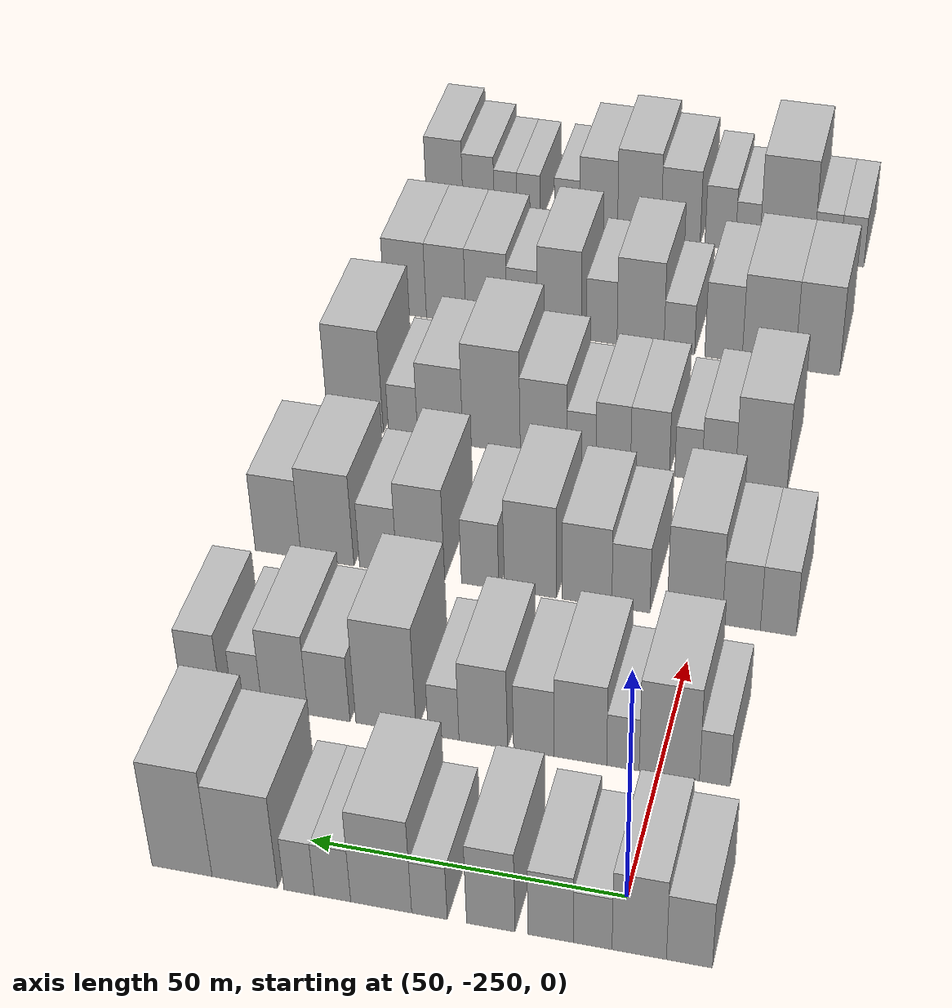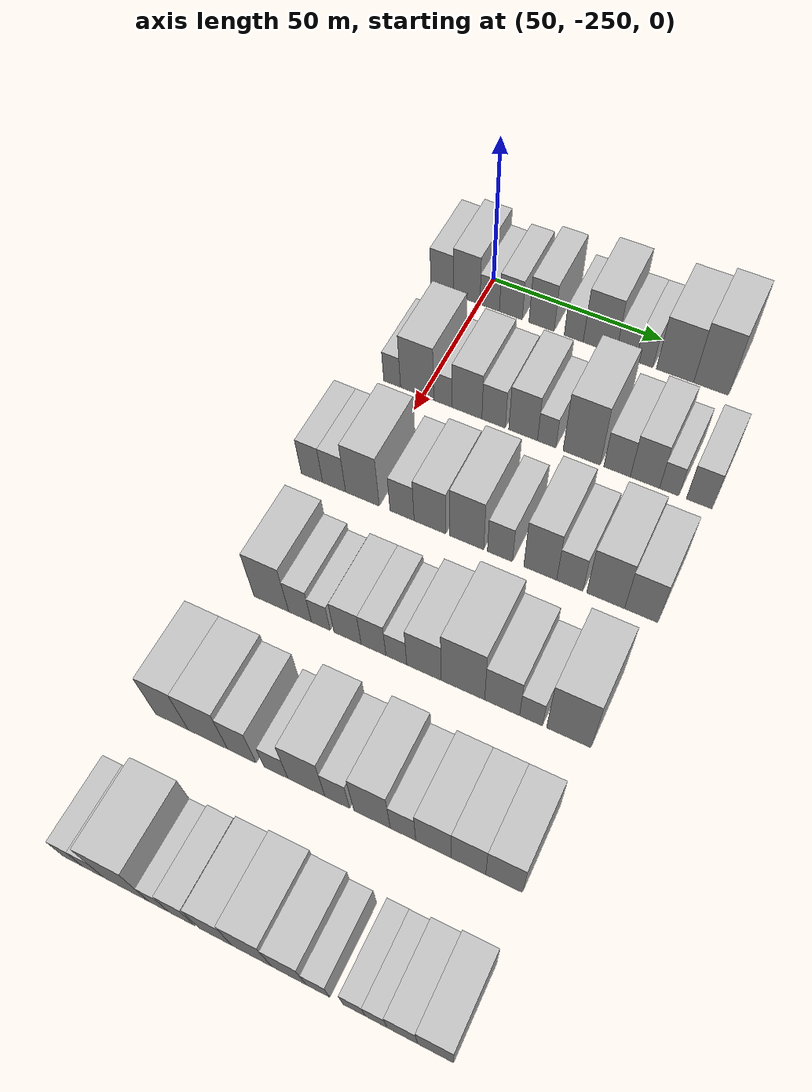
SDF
<sdf version="1.6">
 <world name="default">
  <model name="building_34">
   <static>1</static>
   <pose>50.0000 -261.4347 0 0.000000 0.000000 0.000000</pose>
   <link name="link">
    <pose>0 0 7.50 0 0 0</pose>
    <collision name="collision"><geometry><box><size>20.0000 6.9154 15.0000</size></box></geometry></collision>
    <visual name="visual">
     <cast_shadows>0</cast_shadows>
     <geometry><box><size>20.0000 6.9154 15.0000</size></box></geometry>
     <material>
      <script>
       <uri>model://HANNAS_wall/materials/scripts</uri>
       <uri>model://HANNAS_wall/materials/textures</uri>
       <name>vrc/HANNAS_wall</name>
      </script>
     </material>
    </visual>
   </link>
  </model>
  <model name="building_35">
   <static>1</static>
   <pose>50.0000 -253.8665 0 0.000000 0.000000 0.000000</pose>
   <link name="link">
    <pose>0 0 9.00 0 0 0</pose>
    <collision name="collision"><geometry><box><size>20.0000 8.2210 18.0000</size></box></geometry></collision>
    <visual name="visual">
     <cast_shadows>0</cast_shadows>
     <geometry><box><size>20.0000 8.2210 18.0000</size></box></geometry>
     <material>
      <script>
       <uri>model://HANNAS_wall/materials/scripts</uri>
       <uri>model://HANNAS_wall/materials/textures</uri>
       <name>vrc/HANNAS_wall</name>
      </script>
     </material>
    </visual>
   </link>
  </model>
  <model name="building_36">
   <static>1</static>
   <pose>50.0000 -246.8080 0 0.000000 0.000000 0.000000</pose>
   <link name="link">
    <pose>0 0 6.00 0 0 0</pose>
    <collision name="collision"><geometry><box><size>20.0000 5.8959 12.0000</size></box></geometry></collision>
    <visual name="visual">
     <cast_shadows>0</cast_shadows>
     <geometry><box><size>20.0000 5.8959 12.0000</size></box></geometry>
     <material>
      <script>
       <uri>model://HANNAS_wall/materials/scripts</uri>
       <uri>model://HANNAS_wall/materials/textures</uri>
       <name>vrc/HANNAS_wall</name>
      </script>
     </material>
    </visual>
   </link>
  </model>
  <model name="building_37">
   <static>1</static>
   <pose>50.0000 -240.4075 0 0.000000 0.000000 0.000000</pose>
   <link name="link">
    <pose>0 0 7.50 0 0 0</pose>
    <collision name="collision"><geometry><box><size>20.0000 6.9051 15.0000</size></box></geometry></collision>
    <visual name="visual">
     <cast_shadows>0</cast_shadows>
     <geometry><box><size>20.0000 6.9051 15.0000</size></box></geometry>
     <material>
      <script>
       <uri>model://HANNAS_wall/materials/scripts</uri>
       <uri>model://HANNAS_wall/materials/textures</uri>
       <name>vrc/HANNAS_wall</name>
      </script>
     </material>
    </visual>
   </link>
  </model>
  <model name="building_38">
   <static>1</static>
   <pose>50.0000 -231.2114 0 0.000000 0.000000 0.000000</pose>
   <link name="link">
    <pose>0 0 9.00 0 0 0</pose>
    <collision name="collision"><geometry><box><size>20.0000 7.4870 18.0000</size></box></geometry></collision>
    <visual name="visual">
     <cast_shadows>0</cast_shadows>
     <geometry><box><size>20.0000 7.4870 18.0000</size></box></geometry>
     <material>
      <script>
       <uri>model://HANNAS_wall/materials/scripts</uri>
       <uri>model://HANNAS_wall/materials/textures</uri>
       <name>vrc/HANNAS_wall</name>
      </script>
     </material>
    </visual>
   </link>
  </model>
  <model name="building_39">
   <static>1</static>
   <pose>50.0000 -221.6934 0 0.000000 0.000000 0.000000</pose>
   <link name="link">
    <pose>0 0 6.00 0 0 0</pose>
    <collision name="collision"><geometry><box><size>20.0000 5.5491 12.0000</size></box></geometry></collision>
    <visual name="visual">
     <cast_shadows>0</cast_shadows>
     <geometry><box><size>20.0000 5.5491 12.0000</size></box></geometry>
     <material>
      <script>
       <uri>model://HANNAS_wall/materials/scripts</uri>
       <uri>model://HANNAS_wall/materials/textures</uri>
       <name>vrc/HANNAS_wall</name>
      </script>
     </material>
    </visual>
   </link>
  </model>
  <model name="building_40">
   <static>1</static>
   <pose>50.0000 -214.1381 0 0.000000 0.000000 0.000000</pose>
   <link name="link">
    <pose>0 0 10.50 0 0 0</pose>
    <collision name="collision"><geometry><box><size>20.0000 9.5614 21.0000</size></box></geometry></collision>
    <visual name="visual">
     <cast_shadows>0</cast_shadows>
     <geometry><box><size>20.0000 9.5614 21.0000</size></box></geometry>
     <material>
      <script>
       <uri>model://HANNAS_wall/materials/scripts</uri>
       <uri>model://HANNAS_wall/materials/textures</uri>
       <name>vrc/HANNAS_wall</name>
      </script>
     </material>
    </visual>
   </link>
  </model>
  <model name="building_41">
   <static>1</static>
   <pose>50.0000 -206.4901 0 0.000000 0.000000 0.000000</pose>
   <link name="link">
    <pose>0 0 6.00 0 0 0</pose>
    <collision name="collision"><geometry><box><size>20.0000 5.7346 12.0000</size></box></geometry></collision>
    <visual name="visual">
     <cast_shadows>0</cast_shadows>
     <geometry><box><size>20.0000 5.7346 12.0000</size></box></geometry>
     <material>
      <script>
       <uri>model://HANNAS_wall/materials/scripts</uri>
       <uri>model://HANNAS_wall/materials/textures</uri>
       <name>vrc/HANNAS_wall</name>
      </script>
     </material>
    </visual>
   </link>
  </model>
  <model name="building_42">
   <static>1</static>
   <pose>50.0000 -201.2064 0 0.000000 0.000000 0.000000</pose>
   <link name="link">
    <pose>0 0 6.00 0 0 0</pose>
    <collision name="collision"><geometry><box><size>20.0000 4.8327 12.0000</size></box></geometry></collision>
    <visual name="visual">
     <cast_shadows>0</cast_shadows>
     <geometry><box><size>20.0000 4.8327 12.0000</size></box></geometry>
     <material>
      <script>
       <uri>model://HANNAS_wall/materials/scripts</uri>
       <uri>model://HANNAS_wall/materials/textures</uri>
       <name>vrc/HANNAS_wall</name>
      </script>
     </material>
    </visual>
   </link>
  </model>
  <model name="building_43">
   <static>1</static>
   <pose>50.0000 -192.5518 0 0.000000 0.000000 0.000000</pose>
   <link name="link">
    <pose>0 0 10.50 0 0 0</pose>
    <collision name="collision"><geometry><box><size>20.0000 10.4765 21.0000</size></box></geometry></collision>
    <visual name="visual">
     <cast_shadows>0</cast_shadows>
     <geometry><box><size>20.0000 10.4765 21.0000</size></box></geometry>
     <material>
      <script>
       <uri>model://HANNAS_wall/materials/scripts</uri>
       <uri>model://HANNAS_wall/materials/textures</uri>
       <name>vrc/HANNAS_wall</name>
      </script>
     </material>
    </visual>
   </link>
  </model>
  <model name="building_44">
   <static>1</static>
   <pose>50.0000 -182.4696 0 0.000000 0.000000 0.000000</pose>
   <link name="link">
    <pose>0 0 12.00 0 0 0</pose>
    <collision name="collision"><geometry><box><size>20.0000 9.6878 24.0000</size></box></geometry></collision>
    <visual name="visual">
     <cast_shadows>0</cast_shadows>
     <geometry><box><size>20.0000 9.6878 24.0000</size></box></geometry>
     <material>
      <script>
       <uri>model://HANNAS_wall/materials/scripts</uri>
       <uri>model://HANNAS_wall/materials/textures</uri>
       <name>vrc/HANNAS_wall</name>
      </script>
     </material>
    </visual>
   </link>
  </model>
  <model name="building_163">
   <static>1</static>
   <pose>85.0000 -259.0884 0 0.000000 0.000000 0.000000</pose>
   <link name="link">
    <pose>0 0 6.00 0 0 0</pose>
    <collision name="collision"><geometry><box><size>20.0000 4.9597 12.0000</size></box></geometry></collision>
    <visual name="visual">
     <cast_shadows>0</cast_shadows>
     <geometry><box><size>20.0000 4.9597 12.0000</size></box></geometry>
     <material>
      <script>
       <uri>model://HANNAS_wall/materials/scripts</uri>
       <uri>model://HANNAS_wall/materials/textures</uri>
       <name>vrc/HANNAS_wall</name>
      </script>
     </material>
    </visual>
   </link>
  </model>
  <model name="building_164">
   <static>1</static>
   <pose>85.0000 -251.7261 0 0.000000 0.000000 0.000000</pose>
   <link name="link">
    <pose>0 0 10.50 0 0 0</pose>
    <collision name="collision"><geometry><box><size>20.0000 9.7650 21.0000</size></box></geometry></collision>
    <visual name="visual">
     <cast_shadows>0</cast_shadows>
     <geometry><box><size>20.0000 9.7650 21.0000</size></box></geometry>
     <material>
      <script>
       <uri>model://HANNAS_wall/materials/scripts</uri>
       <uri>model://HANNAS_wall/materials/textures</uri>
       <name>vrc/HANNAS_wall</name>
      </script>
     </material>
    </visual>
   </link>
  </model>
  <model name="building_165">
   <static>1</static>
   <pose>85.0000 -244.2029 0 0.000000 0.000000 0.000000</pose>
   <link name="link">
    <pose>0 0 6.00 0 0 0</pose>
    <collision name="collision"><geometry><box><size>20.0000 5.2815 12.0000</size></box></geometry></collision>
    <visual name="visual">
     <cast_shadows>0</cast_shadows>
     <geometry><box><size>20.0000 5.2815 12.0000</size></box></geometry>
     <material>
      <script>
       <uri>model://HANNAS_wall/materials/scripts</uri>
       <uri>model://HANNAS_wall/materials/textures</uri>
       <name>vrc/HANNAS_wall</name>
      </script>
     </material>
    </visual>
   </link>
  </model>
  <model name="building_166">
   <static>1</static>
   <pose>85.0000 -237.2436 0 0.000000 0.000000 0.000000</pose>
   <link name="link">
    <pose>0 0 9.00 0 0 0</pose>
    <collision name="collision"><geometry><box><size>20.0000 8.6370 18.0000</size></box></geometry></collision>
    <visual name="visual">
     <cast_shadows>0</cast_shadows>
     <geometry><box><size>20.0000 8.6370 18.0000</size></box></geometry>
     <material>
      <script>
       <uri>model://HANNAS_wall/materials/scripts</uri>
       <uri>model://HANNAS_wall/materials/textures</uri>
       <name>vrc/HANNAS_wall</name>
      </script>
     </material>
    </visual>
   </link>
  </model>
  <model name="building_167">
   <static>1</static>
   <pose>85.0000 -229.5932 0 0.000000 0.000000 0.000000</pose>
   <link name="link">
    <pose>0 0 7.50 0 0 0</pose>
    <collision name="collision"><geometry><box><size>20.0000 6.6638 15.0000</size></box></geometry></collision>
    <visual name="visual">
     <cast_shadows>0</cast_shadows>
     <geometry><box><size>20.0000 6.6638 15.0000</size></box></geometry>
     <material>
      <script>
       <uri>model://HANNAS_wall/materials/scripts</uri>
       <uri>model://HANNAS_wall/materials/textures</uri>
       <name>vrc/HANNAS_wall</name>
      </script>
     </material>
    </visual>
   </link>
  </model>
  <model name="building_168">
   <static>1</static>
   <pose>85.0000 -221.2297 0 0.000000 0.000000 0.000000</pose>
   <link name="link">
    <pose>0 0 9.00 0 0 0</pose>
    <collision name="collision"><geometry><box><size>20.0000 8.0633 18.0000</size></box></geometry></collision>
    <visual name="visual">
     <cast_shadows>0</cast_shadows>
     <geometry><box><size>20.0000 8.0633 18.0000</size></box></geometry>
     <material>
      <script>
       <uri>model://HANNAS_wall/materials/scripts</uri>
       <uri>model://HANNAS_wall/materials/textures</uri>
       <name>vrc/HANNAS_wall</name>
      </script>
     </material>
    </visual>
   </link>
  </model>
  <model name="building_169">
   <static>1</static>
   <pose>85.0000 -214.6280 0 0.000000 0.000000 0.000000</pose>
   <link name="link">
    <pose>0 0 6.00 0 0 0</pose>
    <collision name="collision"><geometry><box><size>20.0000 5.1401 12.0000</size></box></geometry></collision>
    <visual name="visual">
     <cast_shadows>0</cast_shadows>
     <geometry><box><size>20.0000 5.1401 12.0000</size></box></geometry>
     <material>
      <script>
       <uri>model://HANNAS_wall/materials/scripts</uri>
       <uri>model://HANNAS_wall/materials/textures</uri>
       <name>vrc/HANNAS_wall</name>
      </script>
     </material>
    </visual>
   </link>
  </model>
  <model name="building_170">
   <static>1</static>
   <pose>85.0000 -204.9661 0 0.000000 0.000000 0.000000</pose>
   <link name="link">
    <pose>0 0 12.00 0 0 0</pose>
    <collision name="collision"><geometry><box><size>20.0000 10.1837 24.0000</size></box></geometry></collision>
    <visual name="visual">
     <cast_shadows>0</cast_shadows>
     <geometry><box><size>20.0000 10.1837 24.0000</size></box></geometry>
     <material>
      <script>
       <uri>model://HANNAS_wall/materials/scripts</uri>
       <uri>model://HANNAS_wall/materials/textures</uri>
       <name>vrc/HANNAS_wall</name>
      </script>
     </material>
    </visual>
   </link>
  </model>
  <model name="building_171">
   <static>1</static>
   <pose>85.0000 -195.2901 0 0.000000 0.000000 0.000000</pose>
   <link name="link">
    <pose>0 0 7.50 0 0 0</pose>
    <collision name="collision"><geometry><box><size>20.0000 7.1682 15.0000</size></box></geometry></collision>
    <visual name="visual">
     <cast_shadows>0</cast_shadows>
     <geometry><box><size>20.0000 7.1682 15.0000</size></box></geometry>
     <material>
      <script>
       <uri>model://HANNAS_wall/materials/scripts</uri>
       <uri>model://HANNAS_wall/materials/textures</uri>
       <name>vrc/HANNAS_wall</name>
      </script>
     </material>
    </visual>
   </link>
  </model>
  <model name="building_172">
   <static>1</static>
   <pose>85.0000 -187.7900 0 0.000000 0.000000 0.000000</pose>
   <link name="link">
    <pose>0 0 9.00 0 0 0</pose>
    <collision name="collision"><geometry><box><size>20.0000 7.8319 18.0000</size></box></geometry></collision>
    <visual name="visual">
     <cast_shadows>0</cast_shadows>
     <geometry><box><size>20.0000 7.8319 18.0000</size></box></geometry>
     <material>
      <script>
       <uri>model://HANNAS_wall/materials/scripts</uri>
       <uri>model://HANNAS_wall/materials/textures</uri>
       <name>vrc/HANNAS_wall</name>
      </script>
     </material>
    </visual>
   </link>
  </model>
  <model name="building_173">
   <static>1</static>
   <pose>85.0000 -181.3214 0 0.000000 0.000000 0.000000</pose>
   <link name="link">
    <pose>0 0 6.00 0 0 0</pose>
    <collision name="collision"><geometry><box><size>20.0000 5.1052 12.0000</size></box></geometry></collision>
    <visual name="visual">
     <cast_shadows>0</cast_shadows>
     <geometry><box><size>20.0000 5.1052 12.0000</size></box></geometry>
     <material>
      <script>
       <uri>model://HANNAS_wall/materials/scripts</uri>
       <uri>model://HANNAS_wall/materials/textures</uri>
       <name>vrc/HANNAS_wall</name>
      </script>
     </material>
    </visual>
   </link>
  </model>
  <model name="building_174">
   <static>1</static>
   <pose>85.0000 -173.3843 0 0.000000 0.000000 0.000000</pose>
   <link name="link">
    <pose>0 0 7.50 0 0 0</pose>
    <collision name="collision"><geometry><box><size>20.0000 6.7690 15.0000</size></box></geometry></collision>
    <visual name="visual">
     <cast_shadows>0</cast_shadows>
     <geometry><box><size>20.0000 6.7690 15.0000</size></box></geometry>
     <material>
      <script>
       <uri>model://HANNAS_wall/materials/scripts</uri>
       <uri>model://HANNAS_wall/materials/textures</uri>
       <name>vrc/HANNAS_wall</name>
      </script>
     </material>
    </visual>
   </link>
  </model>
  <model name="building_290">
   <static>1</static>
   <pose>120.0000 -263.7962 0 0.000000 0.000000 0.000000</pose>
   <link name="link">
    <pose>0 0 7.50 0 0 0</pose>
    <collision name="collision"><geometry><box><size>20.0000 6.1142 15.0000</size></box></geometry></collision>
    <visual name="visual">
     <cast_shadows>0</cast_shadows>
     <geometry><box><size>20.0000 6.1142 15.0000</size></box></geometry>
     <material>
      <script>
       <uri>model://HANNAS_wall/materials/scripts</uri>
       <uri>model://HANNAS_wall/materials/textures</uri>
       <name>vrc/HANNAS_wall</name>
      </script>
     </material>
    </visual>
   </link>
  </model>
  <model name="building_291">
   <static>1</static>
   <pose>120.0000 -257.4715 0 0.000000 0.000000 0.000000</pose>
   <link name="link">
    <pose>0 0 7.50 0 0 0</pose>
    <collision name="collision"><geometry><box><size>20.0000 6.5351 15.0000</size></box></geometry></collision>
    <visual name="visual">
     <cast_shadows>0</cast_shadows>
     <geometry><box><size>20.0000 6.5351 15.0000</size></box></geometry>
     <material>
      <script>
       <uri>model://HANNAS_wall/materials/scripts</uri>
       <uri>model://HANNAS_wall/materials/textures</uri>
       <name>vrc/HANNAS_wall</name>
      </script>
     </material>
    </visual>
   </link>
  </model>
  <model name="building_292">
   <static>1</static>
   <pose>120.0000 -249.4554 0 0.000000 0.000000 0.000000</pose>
   <link name="link">
    <pose>0 0 10.50 0 0 0</pose>
    <collision name="collision"><geometry><box><size>20.0000 9.4970 21.0000</size></box></geometry></collision>
    <visual name="visual">
     <cast_shadows>0</cast_shadows>
     <geometry><box><size>20.0000 9.4970 21.0000</size></box></geometry>
     <material>
      <script>
       <uri>model://HANNAS_wall/materials/scripts</uri>
       <uri>model://HANNAS_wall/materials/textures</uri>
       <name>vrc/HANNAS_wall</name>
      </script>
     </material>
    </visual>
   </link>
  </model>
  <model name="building_293">
   <static>1</static>
   <pose>120.0000 -238.3846 0 0.000000 0.000000 0.000000</pose>
   <link name="link">
    <pose>0 0 7.50 0 0 0</pose>
    <collision name="collision"><geometry><box><size>20.0000 6.6447 15.0000</size></box></geometry></collision>
    <visual name="visual">
     <cast_shadows>0</cast_shadows>
     <geometry><box><size>20.0000 6.6447 15.0000</size></box></geometry>
     <material>
      <script>
       <uri>model://HANNAS_wall/materials/scripts</uri>
       <uri>model://HANNAS_wall/materials/textures</uri>
       <name>vrc/HANNAS_wall</name>
      </script>
     </material>
    </visual>
   </link>
  </model>
  <model name="building_294">
   <static>1</static>
   <pose>120.0000 -230.7280 0 0.000000 0.000000 0.000000</pose>
   <link name="link">
    <pose>0 0 9.00 0 0 0</pose>
    <collision name="collision"><geometry><box><size>20.0000 8.6684 18.0000</size></box></geometry></collision>
    <visual name="visual">
     <cast_shadows>0</cast_shadows>
     <geometry><box><size>20.0000 8.6684 18.0000</size></box></geometry>
     <material>
      <script>
       <uri>model://HANNAS_wall/materials/scripts</uri>
       <uri>model://HANNAS_wall/materials/textures</uri>
       <name>vrc/HANNAS_wall</name>
      </script>
     </material>
    </visual>
   </link>
  </model>
  <model name="building_295">
   <static>1</static>
   <pose>120.0000 -220.7915 0 0.000000 0.000000 0.000000</pose>
   <link name="link">
    <pose>0 0 10.50 0 0 0</pose>
    <collision name="collision"><geometry><box><size>20.0000 9.2046 21.0000</size></box></geometry></collision>
    <visual name="visual">
     <cast_shadows>0</cast_shadows>
     <geometry><box><size>20.0000 9.2046 21.0000</size></box></geometry>
     <material>
      <script>
       <uri>model://HANNAS_wall/materials/scripts</uri>
       <uri>model://HANNAS_wall/materials/textures</uri>
       <name>vrc/HANNAS_wall</name>
      </script>
     </material>
    </visual>
   </link>
  </model>
  <model name="building_296">
   <static>1</static>
   <pose>120.0000 -211.8702 0 0.000000 0.000000 0.000000</pose>
   <link name="link">
    <pose>0 0 7.50 0 0 0</pose>
    <collision name="collision"><geometry><box><size>20.0000 6.6380 15.0000</size></box></geometry></collision>
    <visual name="visual">
     <cast_shadows>0</cast_shadows>
     <geometry><box><size>20.0000 6.6380 15.0000</size></box></geometry>
     <material>
      <script>
       <uri>model://HANNAS_wall/materials/scripts</uri>
       <uri>model://HANNAS_wall/materials/textures</uri>
       <name>vrc/HANNAS_wall</name>
      </script>
     </material>
    </visual>
   </link>
  </model>
  <model name="building_297">
   <static>1</static>
   <pose>120.0000 -201.2676 0 0.000000 0.000000 0.000000</pose>
   <link name="link">
    <pose>0 0 10.50 0 0 0</pose>
    <collision name="collision"><geometry><box><size>20.0000 8.5671 21.0000</size></box></geometry></collision>
    <visual name="visual">
     <cast_shadows>0</cast_shadows>
     <geometry><box><size>20.0000 8.5671 21.0000</size></box></geometry>
     <material>
      <script>
       <uri>model://HANNAS_wall/materials/scripts</uri>
       <uri>model://HANNAS_wall/materials/textures</uri>
       <name>vrc/HANNAS_wall</name>
      </script>
     </material>
    </visual>
   </link>
  </model>
  <model name="building_298">
   <static>1</static>
   <pose>120.0000 -193.6038 0 0.000000 0.000000 0.000000</pose>
   <link name="link">
    <pose>0 0 7.50 0 0 0</pose>
    <collision name="collision"><geometry><box><size>20.0000 6.7605 15.0000</size></box></geometry></collision>
    <visual name="visual">
     <cast_shadows>0</cast_shadows>
     <geometry><box><size>20.0000 6.7605 15.0000</size></box></geometry>
     <material>
      <script>
       <uri>model://HANNAS_wall/materials/scripts</uri>
       <uri>model://HANNAS_wall/materials/textures</uri>
       <name>vrc/HANNAS_wall</name>
      </script>
     </material>
    </visual>
   </link>
  </model>
  <model name="building_299">
   <static>1</static>
   <pose>120.0000 -184.4174 0 0.000000 0.000000 0.000000</pose>
   <link name="link">
    <pose>0 0 10.50 0 0 0</pose>
    <collision name="collision"><geometry><box><size>20.0000 9.6123 21.0000</size></box></geometry></collision>
    <visual name="visual">
     <cast_shadows>0</cast_shadows>
     <geometry><box><size>20.0000 9.6123 21.0000</size></box></geometry>
     <material>
      <script>
       <uri>model://HANNAS_wall/materials/scripts</uri>
       <uri>model://HANNAS_wall/materials/textures</uri>
       <name>vrc/HANNAS_wall</name>
      </script>
     </material>
    </visual>
   </link>
  </model>
  <model name="building_300">
   <static>1</static>
   <pose>120.0000 -175.4205 0 0.000000 0.000000 0.000000</pose>
   <link name="link">
    <pose>0 0 9.00 0 0 0</pose>
    <collision name="collision"><geometry><box><size>20.0000 8.3814 18.0000</size></box></geometry></collision>
    <visual name="visual">
     <cast_shadows>0</cast_shadows>
     <geometry><box><size>20.0000 8.3814 18.0000</size></box></geometry>
     <material>
      <script>
       <uri>model://HANNAS_wall/materials/scripts</uri>
       <uri>model://HANNAS_wall/materials/textures</uri>
       <name>vrc/HANNAS_wall</name>
      </script>
     </material>
    </visual>
   </link>
  </model>
  <model name="building_413">
   <static>1</static>
   <pose>155.0000 -255.2008 0 0.000000 0.000000 0.000000</pose>
   <link name="link">
    <pose>0 0 10.50 0 0 0</pose>
    <collision name="collision"><geometry><box><size>20.0000 9.4449 21.0000</size></box></geometry></collision>
    <visual name="visual">
     <cast_shadows>0</cast_shadows>
     <geometry><box><size>20.0000 9.4449 21.0000</size></box></geometry>
     <material>
      <script>
       <uri>model://HANNAS_wall/materials/scripts</uri>
       <uri>model://HANNAS_wall/materials/textures</uri>
       <name>vrc/HANNAS_wall</name>
      </script>
     </material>
    </visual>
   </link>
  </model>
  <model name="building_414">
   <static>1</static>
   <pose>155.0000 -247.4265 0 0.000000 0.000000 0.000000</pose>
   <link name="link">
    <pose>0 0 7.50 0 0 0</pose>
    <collision name="collision"><geometry><box><size>20.0000 6.1037 15.0000</size></box></geometry></collision>
    <visual name="visual">
     <cast_shadows>0</cast_shadows>
     <geometry><box><size>20.0000 6.1037 15.0000</size></box></geometry>
     <material>
      <script>
       <uri>model://HANNAS_wall/materials/scripts</uri>
       <uri>model://HANNAS_wall/materials/textures</uri>
       <name>vrc/HANNAS_wall</name>
      </script>
     </material>
    </visual>
   </link>
  </model>
  <model name="building_415">
   <static>1</static>
   <pose>155.0000 -241.8834 0 0.000000 0.000000 0.000000</pose>
   <link name="link">
    <pose>0 0 6.00 0 0 0</pose>
    <collision name="collision"><geometry><box><size>20.0000 4.9825 12.0000</size></box></geometry></collision>
    <visual name="visual">
     <cast_shadows>0</cast_shadows>
     <geometry><box><size>20.0000 4.9825 12.0000</size></box></geometry>
     <material>
      <script>
       <uri>model://HANNAS_wall/materials/scripts</uri>
       <uri>model://HANNAS_wall/materials/textures</uri>
       <name>vrc/HANNAS_wall</name>
      </script>
     </material>
    </visual>
   </link>
  </model>
  <model name="building_416">
   <static>1</static>
   <pose>155.0000 -234.8064 0 0.000000 0.000000 0.000000</pose>
   <link name="link">
    <pose>0 0 7.50 0 0 0</pose>
    <collision name="collision"><geometry><box><size>20.0000 7.1716 15.0000</size></box></geometry></collision>
    <visual name="visual">
     <cast_shadows>0</cast_shadows>
     <geometry><box><size>20.0000 7.1716 15.0000</size></box></geometry>
     <material>
      <script>
       <uri>model://HANNAS_wall/materials/scripts</uri>
       <uri>model://HANNAS_wall/materials/textures</uri>
       <name>vrc/HANNAS_wall</name>
      </script>
     </material>
    </visual>
   </link>
  </model>
  <model name="building_417">
   <static>1</static>
   <pose>155.0000 -228.0021 0 0.000000 0.000000 0.000000</pose>
   <link name="link">
    <pose>0 0 7.50 0 0 0</pose>
    <collision name="collision"><geometry><box><size>20.0000 6.4371 15.0000</size></box></geometry></collision>
    <visual name="visual">
     <cast_shadows>0</cast_shadows>
     <geometry><box><size>20.0000 6.4371 15.0000</size></box></geometry>
     <material>
      <script>
       <uri>model://HANNAS_wall/materials/scripts</uri>
       <uri>model://HANNAS_wall/materials/textures</uri>
       <name>vrc/HANNAS_wall</name>
      </script>
     </material>
    </visual>
   </link>
  </model>
  <model name="building_418">
   <static>1</static>
   <pose>155.0000 -222.0884 0 0.000000 0.000000 0.000000</pose>
   <link name="link">
    <pose>0 0 6.00 0 0 0</pose>
    <collision name="collision"><geometry><box><size>20.0000 5.3902 12.0000</size></box></geometry></collision>
    <visual name="visual">
     <cast_shadows>0</cast_shadows>
     <geometry><box><size>20.0000 5.3902 12.0000</size></box></geometry>
     <material>
      <script>
       <uri>model://HANNAS_wall/materials/scripts</uri>
       <uri>model://HANNAS_wall/materials/textures</uri>
       <name>vrc/HANNAS_wall</name>
      </script>
     </material>
    </visual>
   </link>
  </model>
  <model name="building_419">
   <static>1</static>
   <pose>155.0000 -215.0039 0 0.000000 0.000000 0.000000</pose>
   <link name="link">
    <pose>0 0 9.00 0 0 0</pose>
    <collision name="collision"><geometry><box><size>20.0000 8.7789 18.0000</size></box></geometry></collision>
    <visual name="visual">
     <cast_shadows>0</cast_shadows>
     <geometry><box><size>20.0000 8.7789 18.0000</size></box></geometry>
     <material>
      <script>
       <uri>model://HANNAS_wall/materials/scripts</uri>
       <uri>model://HANNAS_wall/materials/textures</uri>
       <name>vrc/HANNAS_wall</name>
      </script>
     </material>
    </visual>
   </link>
  </model>
  <model name="building_420">
   <static>1</static>
   <pose>155.0000 -205.1797 0 0.000000 0.000000 0.000000</pose>
   <link name="link">
    <pose>0 0 12.00 0 0 0</pose>
    <collision name="collision"><geometry><box><size>20.0000 10.8695 24.0000</size></box></geometry></collision>
    <visual name="visual">
     <cast_shadows>0</cast_shadows>
     <geometry><box><size>20.0000 10.8695 24.0000</size></box></geometry>
     <material>
      <script>
       <uri>model://HANNAS_wall/materials/scripts</uri>
       <uri>model://HANNAS_wall/materials/textures</uri>
       <name>vrc/HANNAS_wall</name>
      </script>
     </material>
    </visual>
   </link>
  </model>
  <model name="building_421">
   <static>1</static>
   <pose>155.0000 -195.4385 0 0.000000 0.000000 0.000000</pose>
   <link name="link">
    <pose>0 0 9.00 0 0 0</pose>
    <collision name="collision"><geometry><box><size>20.0000 8.6129 18.0000</size></box></geometry></collision>
    <visual name="visual">
     <cast_shadows>0</cast_shadows>
     <geometry><box><size>20.0000 8.6129 18.0000</size></box></geometry>
     <material>
      <script>
       <uri>model://HANNAS_wall/materials/scripts</uri>
       <uri>model://HANNAS_wall/materials/textures</uri>
       <name>vrc/HANNAS_wall</name>
      </script>
     </material>
    </visual>
   </link>
  </model>
  <model name="building_422">
   <static>1</static>
   <pose>155.0000 -188.3418 0 0.000000 0.000000 0.000000</pose>
   <link name="link">
    <pose>0 0 6.00 0 0 0</pose>
    <collision name="collision"><geometry><box><size>20.0000 5.5806 12.0000</size></box></geometry></collision>
    <visual name="visual">
     <cast_shadows>0</cast_shadows>
     <geometry><box><size>20.0000 5.5806 12.0000</size></box></geometry>
     <material>
      <script>
       <uri>model://HANNAS_wall/materials/scripts</uri>
       <uri>model://HANNAS_wall/materials/textures</uri>
       <name>vrc/HANNAS_wall</name>
      </script>
     </material>
    </visual>
   </link>
  </model>
  <model name="building_423">
   <static>1</static>
   <pose>155.0000 -179.2209 0 0.000000 0.000000 0.000000</pose>
   <link name="link">
    <pose>0 0 12.00 0 0 0</pose>
    <collision name="collision"><geometry><box><size>20.0000 10.6611 24.0000</size></box></geometry></collision>
    <visual name="visual">
     <cast_shadows>0</cast_shadows>
     <geometry><box><size>20.0000 10.6611 24.0000</size></box></geometry>
     <material>
      <script>
       <uri>model://HANNAS_wall/materials/scripts</uri>
       <uri>model://HANNAS_wall/materials/textures</uri>
       <name>vrc/HANNAS_wall</name>
      </script>
     </material>
    </visual>
   </link>
  </model>
  <model name="building_547">
   <static>1</static>
   <pose>190.0000 -260.4143 0 0.000000 0.000000 0.000000</pose>
   <link name="link">
    <pose>0 0 10.50 0 0 0</pose>
    <collision name="collision"><geometry><box><size>20.0000 8.5682 21.0000</size></box></geometry></collision>
    <visual name="visual">
     <cast_shadows>0</cast_shadows>
     <geometry><box><size>20.0000 8.5682 21.0000</size></box></geometry>
     <material>
      <script>
       <uri>model://HANNAS_wall/materials/scripts</uri>
       <uri>model://HANNAS_wall/materials/textures</uri>
       <name>vrc/HANNAS_wall</name>
      </script>
     </material>
    </visual>
   </link>
  </model>
  <model name="building_548">
   <static>1</static>
   <pose>190.0000 -251.0171 0 0.000000 0.000000 0.000000</pose>
   <link name="link">
    <pose>0 0 10.50 0 0 0</pose>
    <collision name="collision"><geometry><box><size>20.0000 10.2261 21.0000</size></box></geometry></collision>
    <visual name="visual">
     <cast_shadows>0</cast_shadows>
     <geometry><box><size>20.0000 10.2261 21.0000</size></box></geometry>
     <material>
      <script>
       <uri>model://HANNAS_wall/materials/scripts</uri>
       <uri>model://HANNAS_wall/materials/textures</uri>
       <name>vrc/HANNAS_wall</name>
      </script>
     </material>
    </visual>
   </link>
  </model>
  <model name="building_549">
   <static>1</static>
   <pose>190.0000 -242.2821 0 0.000000 0.000000 0.000000</pose>
   <link name="link">
    <pose>0 0 9.00 0 0 0</pose>
    <collision name="collision"><geometry><box><size>20.0000 7.2438 18.0000</size></box></geometry></collision>
    <visual name="visual">
     <cast_shadows>0</cast_shadows>
     <geometry><box><size>20.0000 7.2438 18.0000</size></box></geometry>
     <material>
      <script>
       <uri>model://HANNAS_wall/materials/scripts</uri>
       <uri>model://HANNAS_wall/materials/textures</uri>
       <name>vrc/HANNAS_wall</name>
      </script>
     </material>
    </visual>
   </link>
  </model>
  <model name="building_550">
   <static>1</static>
   <pose>190.0000 -233.6662 0 0.000000 0.000000 0.000000</pose>
   <link name="link">
    <pose>0 0 6.00 0 0 0</pose>
    <collision name="collision"><geometry><box><size>20.0000 5.9878 12.0000</size></box></geometry></collision>
    <visual name="visual">
     <cast_shadows>0</cast_shadows>
     <geometry><box><size>20.0000 5.9878 12.0000</size></box></geometry>
     <material>
      <script>
       <uri>model://HANNAS_wall/materials/scripts</uri>
       <uri>model://HANNAS_wall/materials/textures</uri>
       <name>vrc/HANNAS_wall</name>
      </script>
     </material>
    </visual>
   </link>
  </model>
  <model name="building_551">
   <static>1</static>
   <pose>190.0000 -226.0540 0 0.000000 0.000000 0.000000</pose>
   <link name="link">
    <pose>0 0 10.50 0 0 0</pose>
    <collision name="collision"><geometry><box><size>20.0000 9.2367 21.0000</size></box></geometry></collision>
    <visual name="visual">
     <cast_shadows>0</cast_shadows>
     <geometry><box><size>20.0000 9.2367 21.0000</size></box></geometry>
     <material>
      <script>
       <uri>model://HANNAS_wall/materials/scripts</uri>
       <uri>model://HANNAS_wall/materials/textures</uri>
       <name>vrc/HANNAS_wall</name>
      </script>
     </material>
    </visual>
   </link>
  </model>
  <model name="building_552">
   <static>1</static>
   <pose>190.0000 -218.4228 0 0.000000 0.000000 0.000000</pose>
   <link name="link">
    <pose>0 0 7.50 0 0 0</pose>
    <collision name="collision"><geometry><box><size>20.0000 6.0256 15.0000</size></box></geometry></collision>
    <visual name="visual">
     <cast_shadows>0</cast_shadows>
     <geometry><box><size>20.0000 6.0256 15.0000</size></box></geometry>
     <material>
      <script>
       <uri>model://HANNAS_wall/materials/scripts</uri>
       <uri>model://HANNAS_wall/materials/textures</uri>
       <name>vrc/HANNAS_wall</name>
      </script>
     </material>
    </visual>
   </link>
  </model>
  <model name="building_553">
   <static>1</static>
   <pose>190.0000 -210.0286 0 0.000000 0.000000 0.000000</pose>
   <link name="link">
    <pose>0 0 10.50 0 0 0</pose>
    <collision name="collision"><geometry><box><size>20.0000 8.7628 21.0000</size></box></geometry></collision>
    <visual name="visual">
     <cast_shadows>0</cast_shadows>
     <geometry><box><size>20.0000 8.7628 21.0000</size></box></geometry>
     <material>
      <script>
       <uri>model://HANNAS_wall/materials/scripts</uri>
       <uri>model://HANNAS_wall/materials/textures</uri>
       <name>vrc/HANNAS_wall</name>
      </script>
     </material>
    </visual>
   </link>
  </model>
  <model name="building_554">
   <static>1</static>
   <pose>190.0000 -202.6121 0 0.000000 0.000000 0.000000</pose>
   <link name="link">
    <pose>0 0 7.50 0 0 0</pose>
    <collision name="collision"><geometry><box><size>20.0000 6.0703 15.0000</size></box></geometry></collision>
    <visual name="visual">
     <cast_shadows>0</cast_shadows>
     <geometry><box><size>20.0000 6.0703 15.0000</size></box></geometry>
     <material>
      <script>
       <uri>model://HANNAS_wall/materials/scripts</uri>
       <uri>model://HANNAS_wall/materials/textures</uri>
       <name>vrc/HANNAS_wall</name>
      </script>
     </material>
    </visual>
   </link>
  </model>
  <model name="building_555">
   <static>1</static>
   <pose>190.0000 -195.4424 0 0.000000 0.000000 0.000000</pose>
   <link name="link">
    <pose>0 0 9.00 0 0 0</pose>
    <collision name="collision"><geometry><box><size>20.0000 8.2690 18.0000</size></box></geometry></collision>
    <visual name="visual">
     <cast_shadows>0</cast_shadows>
     <geometry><box><size>20.0000 8.2690 18.0000</size></box></geometry>
     <material>
      <script>
       <uri>model://HANNAS_wall/materials/scripts</uri>
       <uri>model://HANNAS_wall/materials/textures</uri>
       <name>vrc/HANNAS_wall</name>
      </script>
     </material>
    </visual>
   </link>
  </model>
  <model name="building_556">
   <static>1</static>
   <pose>190.0000 -187.3166 0 0.000000 0.000000 0.000000</pose>
   <link name="link">
    <pose>0 0 9.00 0 0 0</pose>
    <collision name="collision"><geometry><box><size>20.0000 7.9827 18.0000</size></box></geometry></collision>
    <visual name="visual">
     <cast_shadows>0</cast_shadows>
     <geometry><box><size>20.0000 7.9827 18.0000</size></box></geometry>
     <material>
      <script>
       <uri>model://HANNAS_wall/materials/scripts</uri>
       <uri>model://HANNAS_wall/materials/textures</uri>
       <name>vrc/HANNAS_wall</name>
      </script>
     </material>
    </visual>
   </link>
  </model>
  <model name="building_557">
   <static>1</static>
   <pose>190.0000 -179.1133 0 0.000000 0.000000 0.000000</pose>
   <link name="link">
    <pose>0 0 9.00 0 0 0</pose>
    <collision name="collision"><geometry><box><size>20.0000 8.4239 18.0000</size></box></geometry></collision>
    <visual name="visual">
     <cast_shadows>0</cast_shadows>
     <geometry><box><size>20.0000 8.4239 18.0000</size></box></geometry>
     <material>
      <script>
       <uri>model://HANNAS_wall/materials/scripts</uri>
       <uri>model://HANNAS_wall/materials/textures</uri>
       <name>vrc/HANNAS_wall</name>
      </script>
     </material>
    </visual>
   </link>
  </model>
  <model name="building_672">
   <static>1</static>
   <pose>225.0000 -262.4043 0 0.000000 0.000000 0.000000</pose>
   <link name="link">
    <pose>0 0 6.00 0 0 0</pose>
    <collision name="collision"><geometry><box><size>20.0000 4.9014 12.0000</size></box></geometry></collision>
    <visual name="visual">
     <cast_shadows>0</cast_shadows>
     <geometry><box><size>20.0000 4.9014 12.0000</size></box></geometry>
     <material>
      <script>
       <uri>model://HANNAS_wall/materials/scripts</uri>
       <uri>model://HANNAS_wall/materials/textures</uri>
       <name>vrc/HANNAS_wall</name>
      </script>
     </material>
    </visual>
   </link>
  </model>
  <model name="building_673">
   <static>1</static>
   <pose>225.0000 -257.2813 0 0.000000 0.000000 0.000000</pose>
   <link name="link">
    <pose>0 0 6.00 0 0 0</pose>
    <collision name="collision"><geometry><box><size>20.0000 5.3448 12.0000</size></box></geometry></collision>
    <visual name="visual">
     <cast_shadows>0</cast_shadows>
     <geometry><box><size>20.0000 5.3448 12.0000</size></box></geometry>
     <material>
      <script>
       <uri>model://HANNAS_wall/materials/scripts</uri>
       <uri>model://HANNAS_wall/materials/textures</uri>
       <name>vrc/HANNAS_wall</name>
      </script>
     </material>
    </visual>
   </link>
  </model>
  <model name="building_674">
   <static>1</static>
   <pose>225.0000 -249.0934 0 0.000000 0.000000 0.000000</pose>
   <link name="link">
    <pose>0 0 12.00 0 0 0</pose>
    <collision name="collision"><geometry><box><size>20.0000 11.0309 24.0000</size></box></geometry></collision>
    <visual name="visual">
     <cast_shadows>0</cast_shadows>
     <geometry><box><size>20.0000 11.0309 24.0000</size></box></geometry>
     <material>
      <script>
       <uri>model://HANNAS_wall/materials/scripts</uri>
       <uri>model://HANNAS_wall/materials/textures</uri>
       <name>vrc/HANNAS_wall</name>
      </script>
     </material>
    </visual>
   </link>
  </model>
  <model name="building_675">
   <static>1</static>
   <pose>225.0000 -241.1127 0 0.000000 0.000000 0.000000</pose>
   <link name="link">
    <pose>0 0 6.00 0 0 0</pose>
    <collision name="collision"><geometry><box><size>20.0000 4.9306 12.0000</size></box></geometry></collision>
    <visual name="visual">
     <cast_shadows>0</cast_shadows>
     <geometry><box><size>20.0000 4.9306 12.0000</size></box></geometry>
     <material>
      <script>
       <uri>model://HANNAS_wall/materials/scripts</uri>
       <uri>model://HANNAS_wall/materials/textures</uri>
       <name>vrc/HANNAS_wall</name>
      </script>
     </material>
    </visual>
   </link>
  </model>
  <model name="building_676">
   <static>1</static>
   <pose>225.0000 -235.5285 0 0.000000 0.000000 0.000000</pose>
   <link name="link">
    <pose>0 0 7.50 0 0 0</pose>
    <collision name="collision"><geometry><box><size>20.0000 6.2378 15.0000</size></box></geometry></collision>
    <visual name="visual">
     <cast_shadows>0</cast_shadows>
     <geometry><box><size>20.0000 6.2378 15.0000</size></box></geometry>
     <material>
      <script>
       <uri>model://HANNAS_wall/materials/scripts</uri>
       <uri>model://HANNAS_wall/materials/textures</uri>
       <name>vrc/HANNAS_wall</name>
      </script>
     </material>
    </visual>
   </link>
  </model>
  <model name="building_677">
   <static>1</static>
   <pose>225.0000 -227.3583 0 0.000000 0.000000 0.000000</pose>
   <link name="link">
    <pose>0 0 9.00 0 0 0</pose>
    <collision name="collision"><geometry><box><size>20.0000 8.1025 18.0000</size></box></geometry></collision>
    <visual name="visual">
     <cast_shadows>0</cast_shadows>
     <geometry><box><size>20.0000 8.1025 18.0000</size></box></geometry>
     <material>
      <script>
       <uri>model://HANNAS_wall/materials/scripts</uri>
       <uri>model://HANNAS_wall/materials/textures</uri>
       <name>vrc/HANNAS_wall</name>
      </script>
     </material>
    </visual>
   </link>
  </model>
  <model name="building_678">
   <static>1</static>
   <pose>225.0000 -218.7881 0 0.000000 0.000000 0.000000</pose>
   <link name="link">
    <pose>0 0 10.50 0 0 0</pose>
    <collision name="collision"><geometry><box><size>20.0000 9.0379 21.0000</size></box></geometry></collision>
    <visual name="visual">
     <cast_shadows>0</cast_shadows>
     <geometry><box><size>20.0000 9.0379 21.0000</size></box></geometry>
     <material>
      <script>
       <uri>model://HANNAS_wall/materials/scripts</uri>
       <uri>model://HANNAS_wall/materials/textures</uri>
       <name>vrc/HANNAS_wall</name>
      </script>
     </material>
    </visual>
   </link>
  </model>
  <model name="building_679">
   <static>1</static>
   <pose>225.0000 -210.3346 0 0.000000 0.000000 0.000000</pose>
   <link name="link">
    <pose>0 0 9.00 0 0 0</pose>
    <collision name="collision"><geometry><box><size>20.0000 7.8692 18.0000</size></box></geometry></collision>
    <visual name="visual">
     <cast_shadows>0</cast_shadows>
     <geometry><box><size>20.0000 7.8692 18.0000</size></box></geometry>
     <material>
      <script>
       <uri>model://HANNAS_wall/materials/scripts</uri>
       <uri>model://HANNAS_wall/materials/textures</uri>
       <name>vrc/HANNAS_wall</name>
      </script>
     </material>
    </visual>
   </link>
  </model>
  <model name="building_680">
   <static>1</static>
   <pose>225.0000 -203.7337 0 0.000000 0.000000 0.000000</pose>
   <link name="link">
    <pose>0 0 6.00 0 0 0</pose>
    <collision name="collision"><geometry><box><size>20.0000 5.3326 12.0000</size></box></geometry></collision>
    <visual name="visual">
     <cast_shadows>0</cast_shadows>
     <geometry><box><size>20.0000 5.3326 12.0000</size></box></geometry>
     <material>
      <script>
       <uri>model://HANNAS_wall/materials/scripts</uri>
       <uri>model://HANNAS_wall/materials/textures</uri>
       <name>vrc/HANNAS_wall</name>
      </script>
     </material>
    </visual>
   </link>
  </model>
  <model name="building_681">
   <static>1</static>
   <pose>225.0000 -195.6125 0 0.000000 0.000000 0.000000</pose>
   <link name="link">
    <pose>0 0 6.00 0 0 0</pose>
    <collision name="collision"><geometry><box><size>20.0000 4.9097 12.0000</size></box></geometry></collision>
    <visual name="visual">
     <cast_shadows>0</cast_shadows>
     <geometry><box><size>20.0000 4.9097 12.0000</size></box></geometry>
     <material>
      <script>
       <uri>model://HANNAS_wall/materials/scripts</uri>
       <uri>model://HANNAS_wall/materials/textures</uri>
       <name>vrc/HANNAS_wall</name>
      </script>
     </material>
    </visual>
   </link>
  </model>
  <model name="building_682">
   <static>1</static>
   <pose>225.0000 -190.7546 0 0.000000 0.000000 0.000000</pose>
   <link name="link">
    <pose>0 0 6.00 0 0 0</pose>
    <collision name="collision"><geometry><box><size>20.0000 4.8060 12.0000</size></box></geometry></collision>
    <visual name="visual">
     <cast_shadows>0</cast_shadows>
     <geometry><box><size>20.0000 4.8060 12.0000</size></box></geometry>
     <material>
      <script>
       <uri>model://HANNAS_wall/materials/scripts</uri>
       <uri>model://HANNAS_wall/materials/textures</uri>
       <name>vrc/HANNAS_wall</name>
      </script>
     </material>
    </visual>
   </link>
  </model>
  <model name="building_683">
   <static>1</static>
   <pose>225.0000 -185.0312 0 0.000000 0.000000 0.000000</pose>
   <link name="link">
    <pose>0 0 7.50 0 0 0</pose>
    <collision name="collision"><geometry><box><size>20.0000 6.6409 15.0000</size></box></geometry></collision>
    <visual name="visual">
     <cast_shadows>0</cast_shadows>
     <geometry><box><size>20.0000 6.6409 15.0000</size></box></geometry>
     <material>
      <script>
       <uri>model://HANNAS_wall/materials/scripts</uri>
       <uri>model://HANNAS_wall/materials/textures</uri>
       <name>vrc/HANNAS_wall</name>
      </script>
     </material>
    </visual>
   </link>
  </model>
  <model name="building_684">
   <static>1</static>
   <pose>225.0000 -177.8149 0 0.000000 0.000000 0.000000</pose>
   <link name="link">
    <pose>0 0 9.00 0 0 0</pose>
    <collision name="collision"><geometry><box><size>20.0000 7.7916 18.0000</size></box></geometry></collision>
    <visual name="visual">
     <cast_shadows>0</cast_shadows>
     <geometry><box><size>20.0000 7.7916 18.0000</size></box></geometry>
     <material>
      <script>
       <uri>model://HANNAS_wall/materials/scripts</uri>
       <uri>model://HANNAS_wall/materials/textures</uri>
       <name>vrc/HANNAS_wall</name>
      </script>
     </material>
    </visual>
   </link>
  </model>
 </world>
</sdf>
